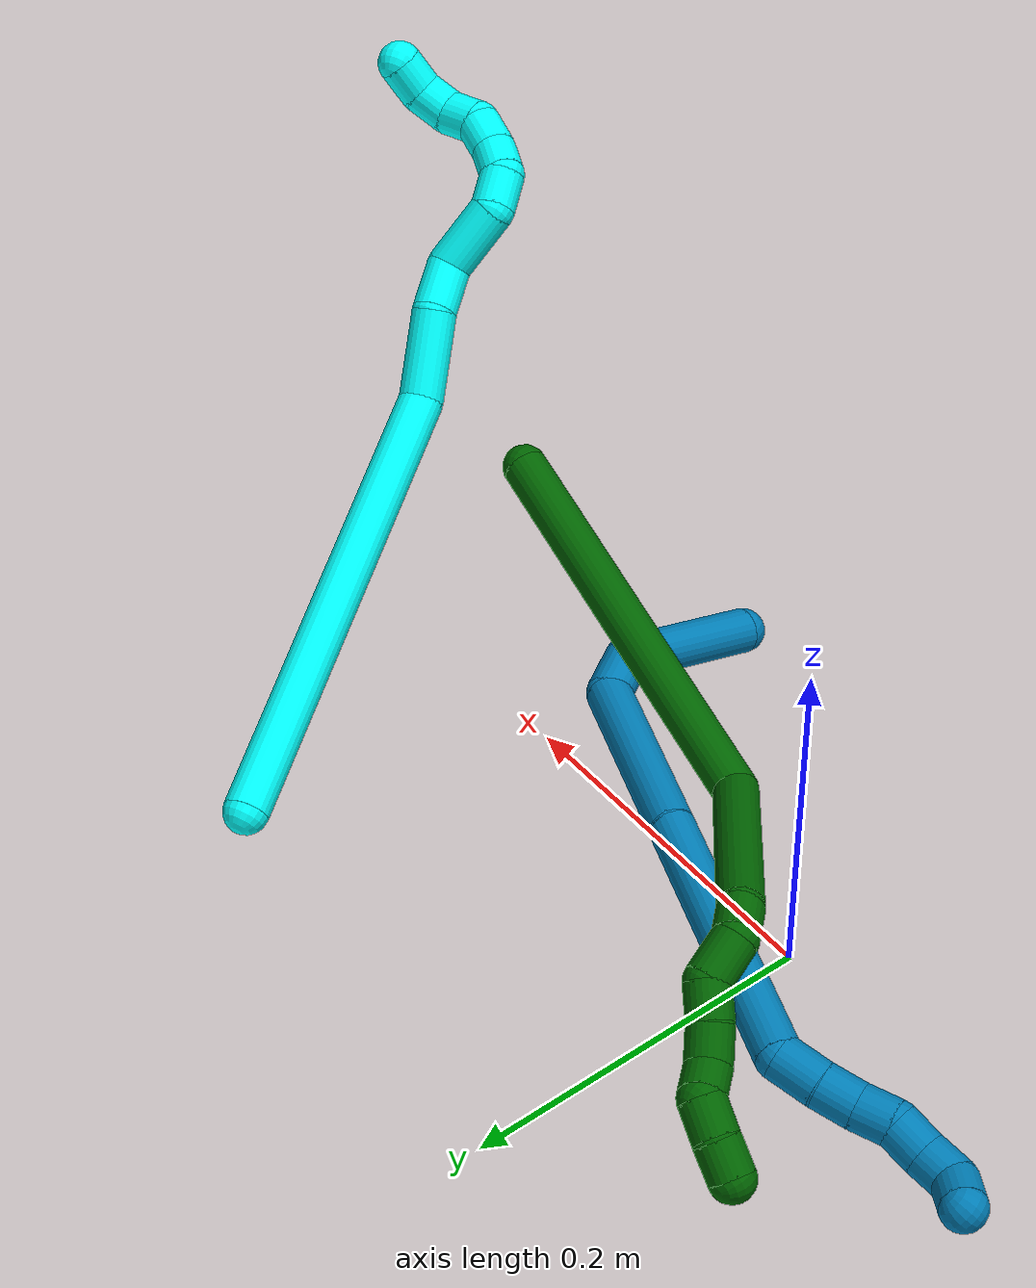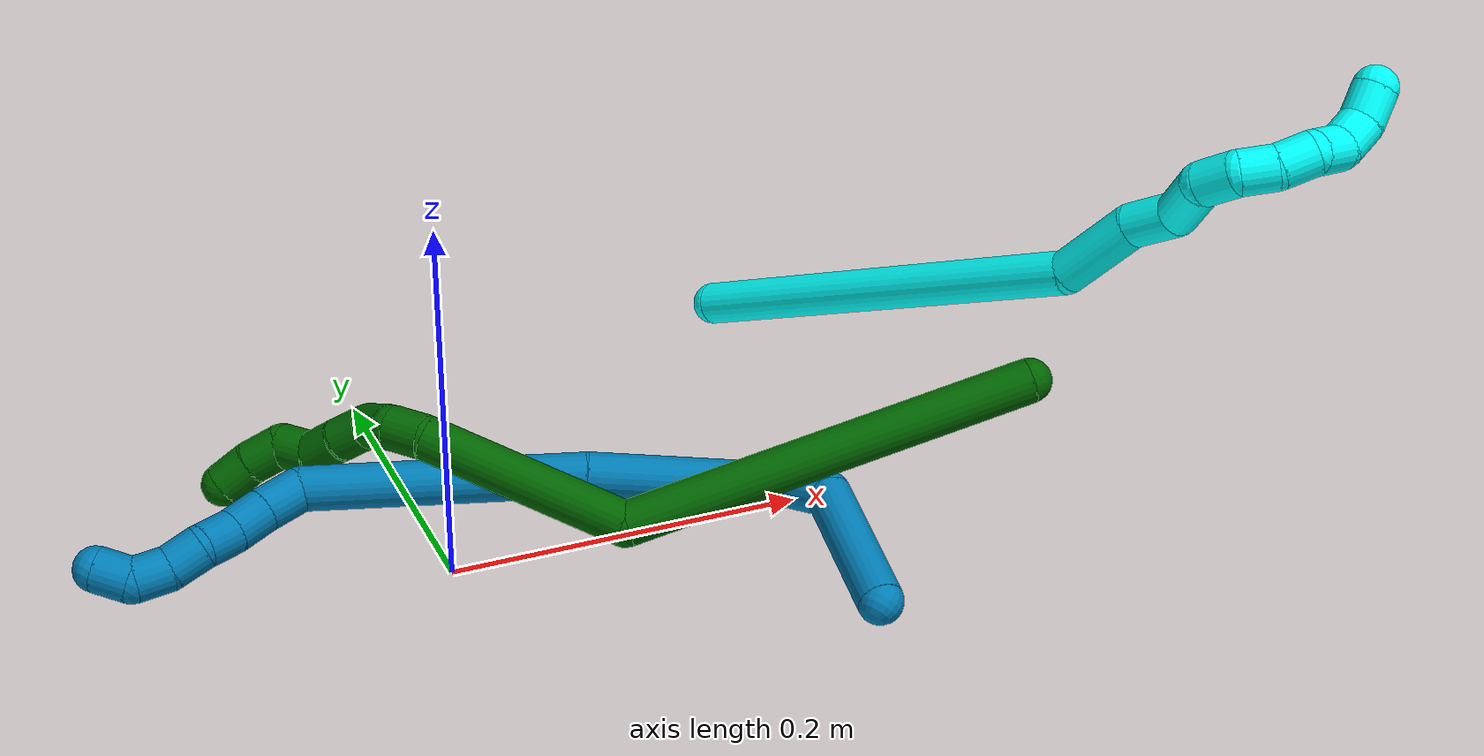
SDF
<sdf version="1.7">
 <world name="default">
  <model name="3">
   <static>0</static>
   <link name="3">
    <collision name="collision-cylinder-e_1_1_4">
     <pose>0.011978 0.007342 -0.128714 -3.08462 0.092639 -2.03918</pose>
     <geometry><cylinder><radius>0.0125</radius><length>0.258956</length></cylinder></geometry>
     <surface>
      <friction><ode><mu>1.16</mu><mu2>1.16</mu2><slip1>0</slip1><slip2>0</slip2></ode></friction>
      <contact><ode><kp>1e+06</kp><kd>1</kd><max_vel>0</max_vel><min_depth>0.001</min_depth></ode></contact>
     </surface>
    </collision>
    <visual name="visual-cylinder-e_1_1_4">
     <pose>0.011978 0.007342 -0.128714 -3.08462 0.092639 -2.03918</pose>
     <geometry><cylinder><radius>0.0125</radius><length>0.258956</length></cylinder></geometry>
     <material><ambient>0.003922 1 0.996078 1</ambient></material>
    </visual>
    <collision name="collision-cylinder-e_2_4_5">
     <pose>0.027676 0.005027 -0.280167 2.74003 0.149487 0.705124</pose>
     <geometry><cylinder><radius>0.0125</radius><length>0.049968</length></cylinder></geometry>
     <surface>
      <friction><ode><mu>1.16</mu><mu2>1.16</mu2><slip1>0</slip1><slip2>0</slip2></ode></friction>
      <contact><ode><kp>1e+06</kp><kd>1</kd><max_vel>0</max_vel><min_depth>0.001</min_depth></ode></contact>
     </surface>
    </collision>
    <visual name="visual-cylinder-e_2_4_5">
     <pose>0.027676 0.005027 -0.280167 2.74003 0.149487 0.705124</pose>
     <geometry><cylinder><radius>0.0125</radius><length>0.049968</length></cylinder></geometry>
     <material><ambient>0.003922 1 0.996078 1</ambient></material>
    </visual>
    <collision name="collision-cylinder-e_3_5_6">
     <pose>0.033183 -0.005691 -0.317109 3.06696 0.124774 2.06422</pose>
     <geometry><cylinder><radius>0.0125</radius><length>0.028705</length></cylinder></geometry>
     <surface>
      <friction><ode><mu>1.16</mu><mu2>1.16</mu2><slip1>0</slip1><slip2>0</slip2></ode></friction>
      <contact><ode><kp>1e+06</kp><kd>1</kd><max_vel>0</max_vel><min_depth>0.001</min_depth></ode></contact>
     </surface>
    </collision>
    <visual name="visual-cylinder-e_3_5_6">
     <pose>0.033183 -0.005691 -0.317109 3.06696 0.124774 2.06422</pose>
     <geometry><cylinder><radius>0.0125</radius><length>0.028705</length></cylinder></geometry>
     <material><ambient>0.003922 1 0.996078 1</ambient></material>
    </visual>
    <collision name="collision-cylinder-e_4_6_7">
     <pose>0.026545 -0.014683 -0.347356 2.68258 -0.439908 -1.52684</pose>
     <geometry><cylinder><radius>0.0125</radius><length>0.039564</length></cylinder></geometry>
     <surface>
      <friction><ode><mu>1.16</mu><mu2>1.16</mu2><slip1>0</slip1><slip2>0</slip2></ode></friction>
      <contact><ode><kp>1e+06</kp><kd>1</kd><max_vel>0</max_vel><min_depth>0.001</min_depth></ode></contact>
     </surface>
    </collision>
    <visual name="visual-cylinder-e_4_6_7">
     <pose>0.026545 -0.014683 -0.347356 2.68258 -0.439908 -1.52684</pose>
     <geometry><cylinder><radius>0.0125</radius><length>0.039564</length></cylinder></geometry>
     <material><ambient>0.003922 1 0.996078 1</ambient></material>
    </visual>
    <collision name="collision-cylinder-e_5_7_8">
     <pose>0.019686 -0.023751 -0.37413 3.03593 0.144101 1.87699</pose>
     <geometry><cylinder><radius>0.0125</radius><length>0.021803</length></cylinder></geometry>
     <surface>
      <friction><ode><mu>1.16</mu><mu2>1.16</mu2><slip1>0</slip1><slip2>0</slip2></ode></friction>
      <contact><ode><kp>1e+06</kp><kd>1</kd><max_vel>0</max_vel><min_depth>0.001</min_depth></ode></contact>
     </surface>
    </collision>
    <visual name="visual-cylinder-e_5_7_8">
     <pose>0.019686 -0.023751 -0.37413 3.03593 0.144101 1.87699</pose>
     <geometry><cylinder><radius>0.0125</radius><length>0.021803</length></cylinder></geometry>
     <material><ambient>0.003922 1 0.996078 1</ambient></material>
    </visual>
    <collision name="collision-cylinder-e_6_8_9">
     <pose>0.027843 -0.023885 -0.392389 -3.00914 0.714599 -2.78994</pose>
     <geometry><cylinder><radius>0.0125</radius><length>0.020117</length></cylinder></geometry>
     <surface>
      <friction><ode><mu>1.16</mu><mu2>1.16</mu2><slip1>0</slip1><slip2>0</slip2></ode></friction>
      <contact><ode><kp>1e+06</kp><kd>1</kd><max_vel>0</max_vel><min_depth>0.001</min_depth></ode></contact>
     </surface>
    </collision>
    <visual name="visual-cylinder-e_6_8_9">
     <pose>0.027843 -0.023885 -0.392389 -3.00914 0.714599 -2.78994</pose>
     <geometry><cylinder><radius>0.0125</radius><length>0.020117</length></cylinder></geometry>
     <material><ambient>0.003922 1 0.996078 1</ambient></material>
    </visual>
    <collision name="collision-cylinder-e_7_9_10">
     <pose>0.042134 -0.024024 -0.40631 2.96463 0.870391 2.76451</pose>
     <geometry><cylinder><radius>0.0125</radius><length>0.02014</length></cylinder></geometry>
     <surface>
      <friction><ode><mu>1.16</mu><mu2>1.16</mu2><slip1>0</slip1><slip2>0</slip2></ode></friction>
      <contact><ode><kp>1e+06</kp><kd>1</kd><max_vel>0</max_vel><min_depth>0.001</min_depth></ode></contact>
     </surface>
    </collision>
    <visual name="visual-cylinder-e_7_9_10">
     <pose>0.042134 -0.024024 -0.40631 2.96463 0.870391 2.76451</pose>
     <geometry><cylinder><radius>0.0125</radius><length>0.02014</length></cylinder></geometry>
     <material><ambient>0.003922 1 0.996078 1</ambient></material>
    </visual>
    <collision name="collision-cylinder-e_8_10_11">
     <pose>0.059879 -0.024159 -0.414119 -2.52436 1.39913 -2.41735</pose>
     <geometry><cylinder><radius>0.0125</radius><length>0.020392</length></cylinder></geometry>
     <surface>
      <friction><ode><mu>1.16</mu><mu2>1.16</mu2><slip1>0</slip1><slip2>0</slip2></ode></friction>
      <contact><ode><kp>1e+06</kp><kd>1</kd><max_vel>0</max_vel><min_depth>0.001</min_depth></ode></contact>
     </surface>
    </collision>
    <visual name="visual-cylinder-e_8_10_11">
     <pose>0.059879 -0.024159 -0.414119 -2.52436 1.39913 -2.41735</pose>
     <geometry><cylinder><radius>0.0125</radius><length>0.020392</length></cylinder></geometry>
     <material><ambient>0.003922 1 0.996078 1</ambient></material>
    </visual>
    <collision name="collision-cylinder-e_9_11_12">
     <pose>0.078783 -0.027429 -0.417646 2.02843 1.07691 1.53002</pose>
     <geometry><cylinder><radius>0.0125</radius><length>0.020119</length></cylinder></geometry>
     <surface>
      <friction><ode><mu>1.16</mu><mu2>1.16</mu2><slip1>0</slip1><slip2>0</slip2></ode></friction>
      <contact><ode><kp>1e+06</kp><kd>1</kd><max_vel>0</max_vel><min_depth>0.001</min_depth></ode></contact>
     </surface>
    </collision>
    <visual name="visual-cylinder-e_9_11_12">
     <pose>0.078783 -0.027429 -0.417646 2.02843 1.07691 1.53002</pose>
     <geometry><cylinder><radius>0.0125</radius><length>0.020119</length></cylinder></geometry>
     <material><ambient>0.003922 1 0.996078 1</ambient></material>
    </visual>
    <collision name="collision-cylinder-e_10_12_2">
     <pose>0.093494 -0.039471 -0.422552 1.91672 0.616851 0.851484</pose>
     <geometry><cylinder><radius>0.0125</radius><length>0.020236</length></cylinder></geometry>
     <surface>
      <friction><ode><mu>1.16</mu><mu2>1.16</mu2><slip1>0</slip1><slip2>0</slip2></ode></friction>
      <contact><ode><kp>1e+06</kp><kd>1</kd><max_vel>0</max_vel><min_depth>0.001</min_depth></ode></contact>
     </surface>
    </collision>
    <visual name="visual-cylinder-e_10_12_2">
     <pose>0.093494 -0.039471 -0.422552 1.91672 0.616851 0.851484</pose>
     <geometry><cylinder><radius>0.0125</radius><length>0.020236</length></cylinder></geometry>
     <material><ambient>0.003922 1 0.996078 1</ambient></material>
    </visual>
    <collision name="collision-sphere-2">
     <pose>0.099347 -0.047236 -0.42535 0 -0 0</pose>
     <geometry><sphere><radius>0.0125</radius></sphere></geometry>
     <surface>
      <friction><ode><mu>1.16</mu><mu2>1.16</mu2><slip1>0</slip1><slip2>0</slip2></ode></friction>
      <contact><ode><kp>1e+06</kp><kd>1</kd><max_vel>0</max_vel><min_depth>0.001</min_depth></ode></contact>
     </surface>
    </collision>
    <visual name="visual-sphere-2">
     <pose>0.099347 -0.047236 -0.42535 0 -0 0</pose>
     <geometry><sphere><radius>0.0125</radius></sphere></geometry>
     <material><ambient>0.003922 1 0.996078 1</ambient></material>
    </visual>
    <collision name="collision-sphere-12">
     <pose>0.08764 -0.031707 -0.419753 0 -0 0</pose>
     <geometry><sphere><radius>0.0125</radius></sphere></geometry>
     <surface>
      <friction><ode><mu>1.16</mu><mu2>1.16</mu2><slip1>0</slip1><slip2>0</slip2></ode></friction>
      <contact><ode><kp>1e+06</kp><kd>1</kd><max_vel>0</max_vel><min_depth>0.001</min_depth></ode></contact>
     </surface>
    </collision>
    <visual name="visual-sphere-12">
     <pose>0.08764 -0.031707 -0.419753 0 -0 0</pose>
     <geometry><sphere><radius>0.0125</radius></sphere></geometry>
     <material><ambient>0.003922 1 0.996078 1</ambient></material>
    </visual>
    <collision name="collision-sphere-11">
     <pose>0.069925 -0.023151 -0.415539 0 -0 0</pose>
     <geometry><sphere><radius>0.0125</radius></sphere></geometry>
     <surface>
      <friction><ode><mu>1.16</mu><mu2>1.16</mu2><slip1>0</slip1><slip2>0</slip2></ode></friction>
      <contact><ode><kp>1e+06</kp><kd>1</kd><max_vel>0</max_vel><min_depth>0.001</min_depth></ode></contact>
     </surface>
    </collision>
    <visual name="visual-sphere-11">
     <pose>0.069925 -0.023151 -0.415539 0 -0 0</pose>
     <geometry><sphere><radius>0.0125</radius></sphere></geometry>
     <material><ambient>0.003922 1 0.996078 1</ambient></material>
    </visual>
    <collision name="collision-sphere-10">
     <pose>0.049833 -0.025167 -0.412699 0 -0 0</pose>
     <geometry><sphere><radius>0.0125</radius></sphere></geometry>
     <surface>
      <friction><ode><mu>1.16</mu><mu2>1.16</mu2><slip1>0</slip1><slip2>0</slip2></ode></friction>
      <contact><ode><kp>1e+06</kp><kd>1</kd><max_vel>0</max_vel><min_depth>0.001</min_depth></ode></contact>
     </surface>
    </collision>
    <visual name="visual-sphere-10">
     <pose>0.049833 -0.025167 -0.412699 0 -0 0</pose>
     <geometry><sphere><radius>0.0125</radius></sphere></geometry>
     <material><ambient>0.003922 1 0.996078 1</ambient></material>
    </visual>
    <collision name="collision-sphere-9">
     <pose>0.034435 -0.022882 -0.39992 0 -0 0</pose>
     <geometry><sphere><radius>0.0125</radius></sphere></geometry>
     <surface>
      <friction><ode><mu>1.16</mu><mu2>1.16</mu2><slip1>0</slip1><slip2>0</slip2></ode></friction>
      <contact><ode><kp>1e+06</kp><kd>1</kd><max_vel>0</max_vel><min_depth>0.001</min_depth></ode></contact>
     </surface>
    </collision>
    <visual name="visual-sphere-9">
     <pose>0.034435 -0.022882 -0.39992 0 -0 0</pose>
     <geometry><sphere><radius>0.0125</radius></sphere></geometry>
     <material><ambient>0.003922 1 0.996078 1</ambient></material>
    </visual>
    <collision name="collision-sphere-4">
     <pose>0.023955 0.014683 -0.257427 0 -0 0</pose>
     <geometry><sphere><radius>0.0125</radius></sphere></geometry>
     <surface>
      <friction><ode><mu>1.16</mu><mu2>1.16</mu2><slip1>0</slip1><slip2>0</slip2></ode></friction>
      <contact><ode><kp>1e+06</kp><kd>1</kd><max_vel>0</max_vel><min_depth>0.001</min_depth></ode></contact>
     </surface>
    </collision>
    <visual name="visual-sphere-4">
     <pose>0.023955 0.014683 -0.257427 0 -0 0</pose>
     <geometry><sphere><radius>0.0125</radius></sphere></geometry>
     <material><ambient>0.003922 1 0.996078 1</ambient></material>
    </visual>
    <collision name="collision-sphere-1">
     <geometry><sphere><radius>0.0125</radius></sphere></geometry>
     <surface>
      <friction><ode><mu>1.16</mu><mu2>1.16</mu2><slip1>0</slip1><slip2>0</slip2></ode></friction>
      <contact><ode><kp>1e+06</kp><kd>1</kd><max_vel>0</max_vel><min_depth>0.001</min_depth></ode></contact>
     </surface>
    </collision>
    <visual name="visual-sphere-1">
     <geometry><sphere><radius>0.0125</radius></sphere></geometry>
     <material><ambient>0.003922 1 0.996078 1</ambient></material>
    </visual>
    <collision name="collision-sphere-8">
     <pose>0.021252 -0.024888 -0.384858 0 -0 0</pose>
     <geometry><sphere><radius>0.0125</radius></sphere></geometry>
     <surface>
      <friction><ode><mu>1.16</mu><mu2>1.16</mu2><slip1>0</slip1><slip2>0</slip2></ode></friction>
      <contact><ode><kp>1e+06</kp><kd>1</kd><max_vel>0</max_vel><min_depth>0.001</min_depth></ode></contact>
     </surface>
    </collision>
    <visual name="visual-sphere-8">
     <pose>0.021252 -0.024888 -0.384858 0 -0 0</pose>
     <geometry><sphere><radius>0.0125</radius></sphere></geometry>
     <material><ambient>0.003922 1 0.996078 1</ambient></material>
    </visual>
    <collision name="collision-sphere-5">
     <pose>0.031397 -0.004629 -0.302907 0 -0 0</pose>
     <geometry><sphere><radius>0.0125</radius></sphere></geometry>
     <surface>
      <friction><ode><mu>1.16</mu><mu2>1.16</mu2><slip1>0</slip1><slip2>0</slip2></ode></friction>
      <contact><ode><kp>1e+06</kp><kd>1</kd><max_vel>0</max_vel><min_depth>0.001</min_depth></ode></contact>
     </surface>
    </collision>
    <visual name="visual-sphere-5">
     <pose>0.031397 -0.004629 -0.302907 0 -0 0</pose>
     <geometry><sphere><radius>0.0125</radius></sphere></geometry>
     <material><ambient>0.003922 1 0.996078 1</ambient></material>
    </visual>
    <collision name="collision-sphere-6">
     <pose>0.034969 -0.006753 -0.33131 0 -0 0</pose>
     <geometry><sphere><radius>0.0125</radius></sphere></geometry>
     <surface>
      <friction><ode><mu>1.16</mu><mu2>1.16</mu2><slip1>0</slip1><slip2>0</slip2></ode></friction>
      <contact><ode><kp>1e+06</kp><kd>1</kd><max_vel>0</max_vel><min_depth>0.001</min_depth></ode></contact>
     </surface>
    </collision>
    <visual name="visual-sphere-6">
     <pose>0.034969 -0.006753 -0.33131 0 -0 0</pose>
     <geometry><sphere><radius>0.0125</radius></sphere></geometry>
     <material><ambient>0.003922 1 0.996078 1</ambient></material>
    </visual>
    <collision name="collision-sphere-7">
     <pose>0.018121 -0.022613 -0.363401 0 -0 0</pose>
     <geometry><sphere><radius>0.0125</radius></sphere></geometry>
     <surface>
      <friction><ode><mu>1.16</mu><mu2>1.16</mu2><slip1>0</slip1><slip2>0</slip2></ode></friction>
      <contact><ode><kp>1e+06</kp><kd>1</kd><max_vel>0</max_vel><min_depth>0.001</min_depth></ode></contact>
     </surface>
    </collision>
    <visual name="visual-sphere-7">
     <pose>0.018121 -0.022613 -0.363401 0 -0 0</pose>
     <geometry><sphere><radius>0.0125</radius></sphere></geometry>
     <material><ambient>0.003922 1 0.996078 1</ambient></material>
    </visual>
    <inertial>
     <pose>0.026047 -0.003835 -0.239616 0 -0 0</pose>
     <mass>0.5</mass>
     <inertia>
      <ixx>-0.001928</ixx>
      <ixy>0</ixy>
      <ixz>0</ixz>
      <iyy>-0.000627</iyy>
      <iyz>0</iyz>
      <izz>-0.000246</izz>
     </inertia>
    </inertial>
   </link>
   <pose>0.225643 0.180024 0.037614 -1.9858 0.067841 0.415054</pose>
  </model>
  <model name="6">
   <static>0</static>
   <link name="6">
    <collision name="collision-cylinder-e_1_1_4">
     <pose>-0.11022 0.009396 0.034117 -0.268757 -1.26013 0.196536</pose>
     <geometry><cylinder><radius>0.0125</radius><length>0.231523</length></cylinder></geometry>
     <surface>
      <friction><ode><mu>1.16</mu><mu2>1.16</mu2><slip1>0</slip1><slip2>0</slip2></ode></friction>
      <contact><ode><kp>1e+06</kp><kd>1</kd><max_vel>0</max_vel><min_depth>0.001</min_depth></ode></contact>
     </surface>
    </collision>
    <visual name="visual-cylinder-e_1_1_4">
     <pose>-0.11022 0.009396 0.034117 -0.268757 -1.26013 0.196536</pose>
     <geometry><cylinder><radius>0.0125</radius><length>0.231523</length></cylinder></geometry>
     <material><ambient>0 0.392157 0.003922 1</ambient></material>
    </visual>
    <collision name="collision-cylinder-e_2_4_5">
     <pose>-0.253489 -0.003683 0.111736 0.476877 -0.5937 -0.148426</pose>
     <geometry><cylinder><radius>0.0125</radius><length>0.11815</length></cylinder></geometry>
     <surface>
      <friction><ode><mu>1.16</mu><mu2>1.16</mu2><slip1>0</slip1><slip2>0</slip2></ode></friction>
      <contact><ode><kp>1e+06</kp><kd>1</kd><max_vel>0</max_vel><min_depth>0.001</min_depth></ode></contact>
     </surface>
    </collision>
    <visual name="visual-cylinder-e_2_4_5">
     <pose>-0.253489 -0.003683 0.111736 0.476877 -0.5937 -0.148426</pose>
     <geometry><cylinder><radius>0.0125</radius><length>0.11815</length></cylinder></geometry>
     <material><ambient>0 0.392157 0.003922 1</ambient></material>
    </visual>
    <collision name="collision-cylinder-e_3_5_6">
     <pose>-0.292112 -0.027586 0.16437 0.155073 -0.542779 -0.04323</pose>
     <geometry><cylinder><radius>0.0125</radius><length>0.021586</length></cylinder></geometry>
     <surface>
      <friction><ode><mu>1.16</mu><mu2>1.16</mu2><slip1>0</slip1><slip2>0</slip2></ode></friction>
      <contact><ode><kp>1e+06</kp><kd>1</kd><max_vel>0</max_vel><min_depth>0.001</min_depth></ode></contact>
     </surface>
    </collision>
    <visual name="visual-cylinder-e_3_5_6">
     <pose>-0.292112 -0.027586 0.16437 0.155073 -0.542779 -0.04323</pose>
     <geometry><cylinder><radius>0.0125</radius><length>0.021586</length></cylinder></geometry>
     <material><ambient>0 0.392157 0.003922 1</ambient></material>
    </visual>
    <collision name="collision-cylinder-e_4_6_7">
     <pose>-0.299804 -0.024466 0.185357 -0.366261 -0.165243 0.030671</pose>
     <geometry><cylinder><radius>0.0125</radius><length>0.025746</length></cylinder></geometry>
     <surface>
      <friction><ode><mu>1.16</mu><mu2>1.16</mu2><slip1>0</slip1><slip2>0</slip2></ode></friction>
      <contact><ode><kp>1e+06</kp><kd>1</kd><max_vel>0</max_vel><min_depth>0.001</min_depth></ode></contact>
     </surface>
    </collision>
    <visual name="visual-cylinder-e_4_6_7">
     <pose>-0.299804 -0.024466 0.185357 -0.366261 -0.165243 0.030671</pose>
     <geometry><cylinder><radius>0.0125</radius><length>0.025746</length></cylinder></geometry>
     <material><ambient>0 0.392157 0.003922 1</ambient></material>
    </visual>
    <collision name="collision-cylinder-e_5_7_8">
     <pose>-0.309268 -0.015678 0.203218 -0.614809 -0.785011 0.261357</pose>
     <geometry><cylinder><radius>0.0125</radius><length>0.020787</length></cylinder></geometry>
     <surface>
      <friction><ode><mu>1.16</mu><mu2>1.16</mu2><slip1>0</slip1><slip2>0</slip2></ode></friction>
      <contact><ode><kp>1e+06</kp><kd>1</kd><max_vel>0</max_vel><min_depth>0.001</min_depth></ode></contact>
     </surface>
    </collision>
    <visual name="visual-cylinder-e_5_7_8">
     <pose>-0.309268 -0.015678 0.203218 -0.614809 -0.785011 0.261357</pose>
     <geometry><cylinder><radius>0.0125</radius><length>0.020787</length></cylinder></geometry>
     <material><ambient>0 0.392157 0.003922 1</ambient></material>
    </visual>
    <collision name="collision-cylinder-e_6_8_9">
     <pose>-0.323016 -0.006365 0.216008 -0.641932 -0.647139 0.222069</pose>
     <geometry><cylinder><radius>0.0125</radius><length>0.021234</length></cylinder></geometry>
     <surface>
      <friction><ode><mu>1.16</mu><mu2>1.16</mu2><slip1>0</slip1><slip2>0</slip2></ode></friction>
      <contact><ode><kp>1e+06</kp><kd>1</kd><max_vel>0</max_vel><min_depth>0.001</min_depth></ode></contact>
     </surface>
    </collision>
    <visual name="visual-cylinder-e_6_8_9">
     <pose>-0.323016 -0.006365 0.216008 -0.641932 -0.647139 0.222069</pose>
     <geometry><cylinder><radius>0.0125</radius><length>0.021234</length></cylinder></geometry>
     <material><ambient>0 0.392157 0.003922 1</ambient></material>
    </visual>
    <collision name="collision-cylinder-e_7_9_10">
     <pose>-0.334423 -0.00222 0.231435 0.106797 -0.522512 -0.028579</pose>
     <geometry><cylinder><radius>0.0125</radius><length>0.020061</length></cylinder></geometry>
     <surface>
      <friction><ode><mu>1.16</mu><mu2>1.16</mu2><slip1>0</slip1><slip2>0</slip2></ode></friction>
      <contact><ode><kp>1e+06</kp><kd>1</kd><max_vel>0</max_vel><min_depth>0.001</min_depth></ode></contact>
     </surface>
    </collision>
    <visual name="visual-cylinder-e_7_9_10">
     <pose>-0.334423 -0.00222 0.231435 0.106797 -0.522512 -0.028579</pose>
     <geometry><cylinder><radius>0.0125</radius><length>0.020061</length></cylinder></geometry>
     <material><ambient>0 0.392157 0.003922 1</ambient></material>
    </visual>
    <collision name="collision-cylinder-e_8_10_11">
     <pose>-0.348507 0.000296 0.243953 -0.726383 -1.05201 0.43433</pose>
     <geometry><cylinder><radius>0.0125</radius><length>0.020908</length></cylinder></geometry>
     <surface>
      <friction><ode><mu>1.16</mu><mu2>1.16</mu2><slip1>0</slip1><slip2>0</slip2></ode></friction>
      <contact><ode><kp>1e+06</kp><kd>1</kd><max_vel>0</max_vel><min_depth>0.001</min_depth></ode></contact>
     </surface>
    </collision>
    <visual name="visual-cylinder-e_8_10_11">
     <pose>-0.348507 0.000296 0.243953 -0.726383 -1.05201 0.43433</pose>
     <geometry><cylinder><radius>0.0125</radius><length>0.020908</length></cylinder></geometry>
     <material><ambient>0 0.392157 0.003922 1</ambient></material>
    </visual>
    <collision name="collision-cylinder-e_9_11_2">
     <pose>-0.366099 0.008275 0.250471 -1.04328 -1.01817 0.620852</pose>
     <geometry><cylinder><radius>0.0125</radius><length>0.020004</length></cylinder></geometry>
     <surface>
      <friction><ode><mu>1.16</mu><mu2>1.16</mu2><slip1>0</slip1><slip2>0</slip2></ode></friction>
      <contact><ode><kp>1e+06</kp><kd>1</kd><max_vel>0</max_vel><min_depth>0.001</min_depth></ode></contact>
     </surface>
    </collision>
    <visual name="visual-cylinder-e_9_11_2">
     <pose>-0.366099 0.008275 0.250471 -1.04328 -1.01817 0.620852</pose>
     <geometry><cylinder><radius>0.0125</radius><length>0.020004</length></cylinder></geometry>
     <material><ambient>0 0.392157 0.003922 1</ambient></material>
    </visual>
    <collision name="collision-sphere-2">
     <pose>-0.374613 0.012812 0.253114 0 -0 0</pose>
     <geometry><sphere><radius>0.0125</radius></sphere></geometry>
     <surface>
      <friction><ode><mu>1.16</mu><mu2>1.16</mu2><slip1>0</slip1><slip2>0</slip2></ode></friction>
      <contact><ode><kp>1e+06</kp><kd>1</kd><max_vel>0</max_vel><min_depth>0.001</min_depth></ode></contact>
     </surface>
    </collision>
    <visual name="visual-sphere-2">
     <pose>-0.374613 0.012812 0.253114 0 -0 0</pose>
     <geometry><sphere><radius>0.0125</radius></sphere></geometry>
     <material><ambient>0 0.392157 0.003922 1</ambient></material>
    </visual>
    <collision name="collision-sphere-11">
     <pose>-0.357586 0.003738 0.247828 0 -0 0</pose>
     <geometry><sphere><radius>0.0125</radius></sphere></geometry>
     <surface>
      <friction><ode><mu>1.16</mu><mu2>1.16</mu2><slip1>0</slip1><slip2>0</slip2></ode></friction>
      <contact><ode><kp>1e+06</kp><kd>1</kd><max_vel>0</max_vel><min_depth>0.001</min_depth></ode></contact>
     </surface>
    </collision>
    <visual name="visual-sphere-11">
     <pose>-0.357586 0.003738 0.247828 0 -0 0</pose>
     <geometry><sphere><radius>0.0125</radius></sphere></geometry>
     <material><ambient>0 0.392157 0.003922 1</ambient></material>
    </visual>
    <collision name="collision-sphere-10">
     <pose>-0.339429 -0.003147 0.240078 0 -0 0</pose>
     <geometry><sphere><radius>0.0125</radius></sphere></geometry>
     <surface>
      <friction><ode><mu>1.16</mu><mu2>1.16</mu2><slip1>0</slip1><slip2>0</slip2></ode></friction>
      <contact><ode><kp>1e+06</kp><kd>1</kd><max_vel>0</max_vel><min_depth>0.001</min_depth></ode></contact>
     </surface>
    </collision>
    <visual name="visual-sphere-10">
     <pose>-0.339429 -0.003147 0.240078 0 -0 0</pose>
     <geometry><sphere><radius>0.0125</radius></sphere></geometry>
     <material><ambient>0 0.392157 0.003922 1</ambient></material>
    </visual>
    <collision name="collision-sphere-9">
     <pose>-0.329417 -0.001294 0.222792 0 -0 0</pose>
     <geometry><sphere><radius>0.0125</radius></sphere></geometry>
     <surface>
      <friction><ode><mu>1.16</mu><mu2>1.16</mu2><slip1>0</slip1><slip2>0</slip2></ode></friction>
      <contact><ode><kp>1e+06</kp><kd>1</kd><max_vel>0</max_vel><min_depth>0.001</min_depth></ode></contact>
     </surface>
    </collision>
    <visual name="visual-sphere-9">
     <pose>-0.329417 -0.001294 0.222792 0 -0 0</pose>
     <geometry><sphere><radius>0.0125</radius></sphere></geometry>
     <material><ambient>0 0.392157 0.003922 1</ambient></material>
    </visual>
    <collision name="collision-sphere-4">
     <pose>-0.220441 0.018793 0.068234 0 -0 0</pose>
     <geometry><sphere><radius>0.0125</radius></sphere></geometry>
     <surface>
      <friction><ode><mu>1.16</mu><mu2>1.16</mu2><slip1>0</slip1><slip2>0</slip2></ode></friction>
      <contact><ode><kp>1e+06</kp><kd>1</kd><max_vel>0</max_vel><min_depth>0.001</min_depth></ode></contact>
     </surface>
    </collision>
    <visual name="visual-sphere-4">
     <pose>-0.220441 0.018793 0.068234 0 -0 0</pose>
     <geometry><sphere><radius>0.0125</radius></sphere></geometry>
     <material><ambient>0 0.392157 0.003922 1</ambient></material>
    </visual>
    <collision name="collision-sphere-1">
     <geometry><sphere><radius>0.0125</radius></sphere></geometry>
     <surface>
      <friction><ode><mu>1.16</mu><mu2>1.16</mu2><slip1>0</slip1><slip2>0</slip2></ode></friction>
      <contact><ode><kp>1e+06</kp><kd>1</kd><max_vel>0</max_vel><min_depth>0.001</min_depth></ode></contact>
     </surface>
    </collision>
    <visual name="visual-sphere-1">
     <geometry><sphere><radius>0.0125</radius></sphere></geometry>
     <material><ambient>0 0.392157 0.003922 1</ambient></material>
    </visual>
    <collision name="collision-sphere-8">
     <pose>-0.316615 -0.011437 0.209224 0 -0 0</pose>
     <geometry><sphere><radius>0.0125</radius></sphere></geometry>
     <surface>
      <friction><ode><mu>1.16</mu><mu2>1.16</mu2><slip1>0</slip1><slip2>0</slip2></ode></friction>
      <contact><ode><kp>1e+06</kp><kd>1</kd><max_vel>0</max_vel><min_depth>0.001</min_depth></ode></contact>
     </surface>
    </collision>
    <visual name="visual-sphere-8">
     <pose>-0.316615 -0.011437 0.209224 0 -0 0</pose>
     <geometry><sphere><radius>0.0125</radius></sphere></geometry>
     <material><ambient>0 0.392157 0.003922 1</ambient></material>
    </visual>
    <collision name="collision-sphere-5">
     <pose>-0.286537 -0.026158 0.155239 0 -0 0</pose>
     <geometry><sphere><radius>0.0125</radius></sphere></geometry>
     <surface>
      <friction><ode><mu>1.16</mu><mu2>1.16</mu2><slip1>0</slip1><slip2>0</slip2></ode></friction>
      <contact><ode><kp>1e+06</kp><kd>1</kd><max_vel>0</max_vel><min_depth>0.001</min_depth></ode></contact>
     </surface>
    </collision>
    <visual name="visual-sphere-5">
     <pose>-0.286537 -0.026158 0.155239 0 -0 0</pose>
     <geometry><sphere><radius>0.0125</radius></sphere></geometry>
     <material><ambient>0 0.392157 0.003922 1</ambient></material>
    </visual>
    <collision name="collision-sphere-6">
     <pose>-0.297687 -0.029013 0.173501 0 -0 0</pose>
     <geometry><sphere><radius>0.0125</radius></sphere></geometry>
     <surface>
      <friction><ode><mu>1.16</mu><mu2>1.16</mu2><slip1>0</slip1><slip2>0</slip2></ode></friction>
      <contact><ode><kp>1e+06</kp><kd>1</kd><max_vel>0</max_vel><min_depth>0.001</min_depth></ode></contact>
     </surface>
    </collision>
    <visual name="visual-sphere-6">
     <pose>-0.297687 -0.029013 0.173501 0 -0 0</pose>
     <geometry><sphere><radius>0.0125</radius></sphere></geometry>
     <material><ambient>0 0.392157 0.003922 1</ambient></material>
    </visual>
    <collision name="collision-sphere-7">
     <pose>-0.301922 -0.019918 0.197212 0 -0 0</pose>
     <geometry><sphere><radius>0.0125</radius></sphere></geometry>
     <surface>
      <friction><ode><mu>1.16</mu><mu2>1.16</mu2><slip1>0</slip1><slip2>0</slip2></ode></friction>
      <contact><ode><kp>1e+06</kp><kd>1</kd><max_vel>0</max_vel><min_depth>0.001</min_depth></ode></contact>
     </surface>
    </collision>
    <visual name="visual-sphere-7">
     <pose>-0.301922 -0.019918 0.197212 0 -0 0</pose>
     <geometry><sphere><radius>0.0125</radius></sphere></geometry>
     <material><ambient>0 0.392157 0.003922 1</ambient></material>
    </visual>
    <inertial>
     <pose>-0.208199 0.000362 0.105971 0 -0 0</pose>
     <mass>0.5</mass>
     <inertia>
      <ixx>0.000455</ixx>
      <ixy>0</ixy>
      <ixz>0</ixz>
      <iyy>0.001226</iyy>
      <iyz>0</iyz>
      <izz>0.001066</izz>
     </inertia>
    </inertial>
   </link>
   <pose>0.307992 -0.068374 0.086425 -1.55065 -0.180461 0.165706</pose>
  </model>
  <model name="9">
   <static>0</static>
   <link name="9">
    <collision name="collision-cylinder-e_1_1_4">
     <pose>0.028581 -0.016777 -0.02412 2.53384 0.771589 1.8266</pose>
     <geometry><cylinder><radius>0.0125</radius><length>0.081978</length></cylinder></geometry>
     <surface>
      <friction><ode><mu>1.16</mu><mu2>1.16</mu2><slip1>0</slip1><slip2>0</slip2></ode></friction>
      <contact><ode><kp>1e+06</kp><kd>1</kd><max_vel>0</max_vel><min_depth>0.001</min_depth></ode></contact>
     </surface>
    </collision>
    <visual name="visual-cylinder-e_1_1_4">
     <pose>0.028581 -0.016777 -0.02412 2.53384 0.771589 1.8266</pose>
     <geometry><cylinder><radius>0.0125</radius><length>0.081978</length></cylinder></geometry>
     <material><ambient>0 0.490196 0.709804 1</ambient></material>
    </visual>
    <collision name="collision-cylinder-e_2_4_5">
     <pose>0.068127 -0.040252 -0.047364 1.44075 1.01875 0.911624</pose>
     <geometry><cylinder><radius>0.0125</radius><length>0.025757</length></cylinder></geometry>
     <surface>
      <friction><ode><mu>1.16</mu><mu2>1.16</mu2><slip1>0</slip1><slip2>0</slip2></ode></friction>
      <contact><ode><kp>1e+06</kp><kd>1</kd><max_vel>0</max_vel><min_depth>0.001</min_depth></ode></contact>
     </surface>
    </collision>
    <visual name="visual-cylinder-e_2_4_5">
     <pose>0.068127 -0.040252 -0.047364 1.44075 1.01875 0.911624</pose>
     <geometry><cylinder><radius>0.0125</radius><length>0.025757</length></cylinder></geometry>
     <material><ambient>0 0.490196 0.709804 1</ambient></material>
    </visual>
    <collision name="collision-cylinder-e_3_5_6">
     <pose>0.097552 -0.092981 -0.021779 1.07816 0.339638 0.204426</pose>
     <geometry><cylinder><radius>0.0125</radius><length>0.11082</length></cylinder></geometry>
     <surface>
      <friction><ode><mu>1.16</mu><mu2>1.16</mu2><slip1>0</slip1><slip2>0</slip2></ode></friction>
      <contact><ode><kp>1e+06</kp><kd>1</kd><max_vel>0</max_vel><min_depth>0.001</min_depth></ode></contact>
     </surface>
    </collision>
    <visual name="visual-cylinder-e_3_5_6">
     <pose>0.097552 -0.092981 -0.021779 1.07816 0.339638 0.204426</pose>
     <geometry><cylinder><radius>0.0125</radius><length>0.11082</length></cylinder></geometry>
     <material><ambient>0 0.490196 0.709804 1</ambient></material>
    </visual>
    <collision name="collision-cylinder-e_4_6_7">
     <pose>0.14413 -0.198915 0.04417 0.967849 0.368938 0.195522</pose>
     <geometry><cylinder><radius>0.0125</radius><length>0.155943</length></cylinder></geometry>
     <surface>
      <friction><ode><mu>1.16</mu><mu2>1.16</mu2><slip1>0</slip1><slip2>0</slip2></ode></friction>
      <contact><ode><kp>1e+06</kp><kd>1</kd><max_vel>0</max_vel><min_depth>0.001</min_depth></ode></contact>
     </surface>
    </collision>
    <visual name="visual-cylinder-e_4_6_7">
     <pose>0.14413 -0.198915 0.04417 0.967849 0.368938 0.195522</pose>
     <geometry><cylinder><radius>0.0125</radius><length>0.155943</length></cylinder></geometry>
     <material><ambient>0 0.490196 0.709804 1</ambient></material>
    </visual>
    <collision name="collision-cylinder-e_5_7_8">
     <pose>0.171044 -0.264549 0.096168 0.489681 -0.098507 -0.024631</pose>
     <geometry><cylinder><radius>0.0125</radius><length>0.024499</length></cylinder></geometry>
     <surface>
      <friction><ode><mu>1.16</mu><mu2>1.16</mu2><slip1>0</slip1><slip2>0</slip2></ode></friction>
      <contact><ode><kp>1e+06</kp><kd>1</kd><max_vel>0</max_vel><min_depth>0.001</min_depth></ode></contact>
     </surface>
    </collision>
    <visual name="visual-cylinder-e_5_7_8">
     <pose>0.171044 -0.264549 0.096168 0.489681 -0.098507 -0.024631</pose>
     <geometry><cylinder><radius>0.0125</radius><length>0.024499</length></cylinder></geometry>
     <material><ambient>0 0.490196 0.709804 1</ambient></material>
    </visual>
    <collision name="collision-cylinder-e_6_8_9">
     <pose>0.16799 -0.274493 0.116305 0.421905 -0.177971 -0.038207</pose>
     <geometry><cylinder><radius>0.0125</radius><length>0.020891</length></cylinder></geometry>
     <surface>
      <friction><ode><mu>1.16</mu><mu2>1.16</mu2><slip1>0</slip1><slip2>0</slip2></ode></friction>
      <contact><ode><kp>1e+06</kp><kd>1</kd><max_vel>0</max_vel><min_depth>0.001</min_depth></ode></contact>
     </surface>
    </collision>
    <visual name="visual-cylinder-e_6_8_9">
     <pose>0.16799 -0.274493 0.116305 0.421905 -0.177971 -0.038207</pose>
     <geometry><cylinder><radius>0.0125</radius><length>0.020891</length></cylinder></geometry>
     <material><ambient>0 0.490196 0.709804 1</ambient></material>
    </visual>
    <collision name="collision-cylinder-e_7_9_10">
     <pose>0.163544 -0.283791 0.133901 0.554428 -0.262511 -0.075092</pose>
     <geometry><cylinder><radius>0.0125</radius><length>0.020016</length></cylinder></geometry>
     <surface>
      <friction><ode><mu>1.16</mu><mu2>1.16</mu2><slip1>0</slip1><slip2>0</slip2></ode></friction>
      <contact><ode><kp>1e+06</kp><kd>1</kd><max_vel>0</max_vel><min_depth>0.001</min_depth></ode></contact>
     </surface>
    </collision>
    <visual name="visual-cylinder-e_7_9_10">
     <pose>0.163544 -0.283791 0.133901 0.554428 -0.262511 -0.075092</pose>
     <geometry><cylinder><radius>0.0125</radius><length>0.020016</length></cylinder></geometry>
     <material><ambient>0 0.490196 0.709804 1</ambient></material>
    </visual>
    <collision name="collision-cylinder-e_8_10_11">
     <pose>0.161954 -0.292872 0.151236 0.412804 0.100825 0.021128</pose>
     <geometry><cylinder><radius>0.0125</radius><length>0.020008</length></cylinder></geometry>
     <surface>
      <friction><ode><mu>1.16</mu><mu2>1.16</mu2><slip1>0</slip1><slip2>0</slip2></ode></friction>
      <contact><ode><kp>1e+06</kp><kd>1</kd><max_vel>0</max_vel><min_depth>0.001</min_depth></ode></contact>
     </surface>
    </collision>
    <visual name="visual-cylinder-e_8_10_11">
     <pose>0.161954 -0.292872 0.151236 0.412804 0.100825 0.021128</pose>
     <geometry><cylinder><radius>0.0125</radius><length>0.020008</length></cylinder></geometry>
     <material><ambient>0 0.490196 0.709804 1</ambient></material>
    </visual>
    <collision name="collision-cylinder-e_9_11_12">
     <pose>0.16333 -0.303244 0.168052 0.691924 0.036951 0.013321</pose>
     <geometry><cylinder><radius>0.0125</radius><length>0.020009</length></cylinder></geometry>
     <surface>
      <friction><ode><mu>1.16</mu><mu2>1.16</mu2><slip1>0</slip1><slip2>0</slip2></ode></friction>
      <contact><ode><kp>1e+06</kp><kd>1</kd><max_vel>0</max_vel><min_depth>0.001</min_depth></ode></contact>
     </surface>
    </collision>
    <visual name="visual-cylinder-e_9_11_12">
     <pose>0.16333 -0.303244 0.168052 0.691924 0.036951 0.013321</pose>
     <geometry><cylinder><radius>0.0125</radius><length>0.020009</length></cylinder></geometry>
     <material><ambient>0 0.490196 0.709804 1</ambient></material>
    </visual>
    <collision name="collision-cylinder-e_10_12_2">
     <pose>0.167369 -0.318733 0.177829 1.34647 0.374127 0.299647</pose>
     <geometry><cylinder><radius>0.0125</radius><length>0.020077</length></cylinder></geometry>
     <surface>
      <friction><ode><mu>1.16</mu><mu2>1.16</mu2><slip1>0</slip1><slip2>0</slip2></ode></friction>
      <contact><ode><kp>1e+06</kp><kd>1</kd><max_vel>0</max_vel><min_depth>0.001</min_depth></ode></contact>
     </surface>
    </collision>
    <visual name="visual-cylinder-e_10_12_2">
     <pose>0.167369 -0.318733 0.177829 1.34647 0.374127 0.299647</pose>
     <geometry><cylinder><radius>0.0125</radius><length>0.020077</length></cylinder></geometry>
     <material><ambient>0 0.490196 0.709804 1</ambient></material>
    </visual>
    <collision name="collision-sphere-2">
     <pose>0.171037 -0.327843 0.179907 0 -0 0</pose>
     <geometry><sphere><radius>0.0125</radius></sphere></geometry>
     <surface>
      <friction><ode><mu>1.16</mu><mu2>1.16</mu2><slip1>0</slip1><slip2>0</slip2></ode></friction>
      <contact><ode><kp>1e+06</kp><kd>1</kd><max_vel>0</max_vel><min_depth>0.001</min_depth></ode></contact>
     </surface>
    </collision>
    <visual name="visual-sphere-2">
     <pose>0.171037 -0.327843 0.179907 0 -0 0</pose>
     <geometry><sphere><radius>0.0125</radius></sphere></geometry>
     <material><ambient>0 0.490196 0.709804 1</ambient></material>
    </visual>
    <collision name="collision-sphere-12">
     <pose>0.1637 -0.309623 0.17575 0 -0 0</pose>
     <geometry><sphere><radius>0.0125</radius></sphere></geometry>
     <surface>
      <friction><ode><mu>1.16</mu><mu2>1.16</mu2><slip1>0</slip1><slip2>0</slip2></ode></friction>
      <contact><ode><kp>1e+06</kp><kd>1</kd><max_vel>0</max_vel><min_depth>0.001</min_depth></ode></contact>
     </surface>
    </collision>
    <visual name="visual-sphere-12">
     <pose>0.1637 -0.309623 0.17575 0 -0 0</pose>
     <geometry><sphere><radius>0.0125</radius></sphere></geometry>
     <material><ambient>0 0.490196 0.709804 1</ambient></material>
    </visual>
    <collision name="collision-sphere-11">
     <pose>0.162961 -0.296865 0.160353 0 -0 0</pose>
     <geometry><sphere><radius>0.0125</radius></sphere></geometry>
     <surface>
      <friction><ode><mu>1.16</mu><mu2>1.16</mu2><slip1>0</slip1><slip2>0</slip2></ode></friction>
      <contact><ode><kp>1e+06</kp><kd>1</kd><max_vel>0</max_vel><min_depth>0.001</min_depth></ode></contact>
     </surface>
    </collision>
    <visual name="visual-sphere-11">
     <pose>0.162961 -0.296865 0.160353 0 -0 0</pose>
     <geometry><sphere><radius>0.0125</radius></sphere></geometry>
     <material><ambient>0 0.490196 0.709804 1</ambient></material>
    </visual>
    <collision name="collision-sphere-10">
     <pose>0.160947 -0.288879 0.142119 0 -0 0</pose>
     <geometry><sphere><radius>0.0125</radius></sphere></geometry>
     <surface>
      <friction><ode><mu>1.16</mu><mu2>1.16</mu2><slip1>0</slip1><slip2>0</slip2></ode></friction>
      <contact><ode><kp>1e+06</kp><kd>1</kd><max_vel>0</max_vel><min_depth>0.001</min_depth></ode></contact>
     </surface>
    </collision>
    <visual name="visual-sphere-10">
     <pose>0.160947 -0.288879 0.142119 0 -0 0</pose>
     <geometry><sphere><radius>0.0125</radius></sphere></geometry>
     <material><ambient>0 0.490196 0.709804 1</ambient></material>
    </visual>
    <collision name="collision-sphere-9">
     <pose>0.166141 -0.278703 0.125684 0 -0 0</pose>
     <geometry><sphere><radius>0.0125</radius></sphere></geometry>
     <surface>
      <friction><ode><mu>1.16</mu><mu2>1.16</mu2><slip1>0</slip1><slip2>0</slip2></ode></friction>
      <contact><ode><kp>1e+06</kp><kd>1</kd><max_vel>0</max_vel><min_depth>0.001</min_depth></ode></contact>
     </surface>
    </collision>
    <visual name="visual-sphere-9">
     <pose>0.166141 -0.278703 0.125684 0 -0 0</pose>
     <geometry><sphere><radius>0.0125</radius></sphere></geometry>
     <material><ambient>0 0.490196 0.709804 1</ambient></material>
    </visual>
    <collision name="collision-sphere-4">
     <pose>0.057161 -0.033555 -0.04824 0 -0 0</pose>
     <geometry><sphere><radius>0.0125</radius></sphere></geometry>
     <surface>
      <friction><ode><mu>1.16</mu><mu2>1.16</mu2><slip1>0</slip1><slip2>0</slip2></ode></friction>
      <contact><ode><kp>1e+06</kp><kd>1</kd><max_vel>0</max_vel><min_depth>0.001</min_depth></ode></contact>
     </surface>
    </collision>
    <visual name="visual-sphere-4">
     <pose>0.057161 -0.033555 -0.04824 0 -0 0</pose>
     <geometry><sphere><radius>0.0125</radius></sphere></geometry>
     <material><ambient>0 0.490196 0.709804 1</ambient></material>
    </visual>
    <collision name="collision-sphere-1">
     <geometry><sphere><radius>0.0125</radius></sphere></geometry>
     <surface>
      <friction><ode><mu>1.16</mu><mu2>1.16</mu2><slip1>0</slip1><slip2>0</slip2></ode></friction>
      <contact><ode><kp>1e+06</kp><kd>1</kd><max_vel>0</max_vel><min_depth>0.001</min_depth></ode></contact>
     </surface>
    </collision>
    <visual name="visual-sphere-1">
     <geometry><sphere><radius>0.0125</radius></sphere></geometry>
     <material><ambient>0 0.490196 0.709804 1</ambient></material>
    </visual>
    <collision name="collision-sphere-8">
     <pose>0.169839 -0.270283 0.106926 0 -0 0</pose>
     <geometry><sphere><radius>0.0125</radius></sphere></geometry>
     <surface>
      <friction><ode><mu>1.16</mu><mu2>1.16</mu2><slip1>0</slip1><slip2>0</slip2></ode></friction>
      <contact><ode><kp>1e+06</kp><kd>1</kd><max_vel>0</max_vel><min_depth>0.001</min_depth></ode></contact>
     </surface>
    </collision>
    <visual name="visual-sphere-8">
     <pose>0.169839 -0.270283 0.106926 0 -0 0</pose>
     <geometry><sphere><radius>0.0125</radius></sphere></geometry>
     <material><ambient>0 0.490196 0.709804 1</ambient></material>
    </visual>
    <collision name="collision-sphere-5">
     <pose>0.079093 -0.046949 -0.046488 0 -0 0</pose>
     <geometry><sphere><radius>0.0125</radius></sphere></geometry>
     <surface>
      <friction><ode><mu>1.16</mu><mu2>1.16</mu2><slip1>0</slip1><slip2>0</slip2></ode></friction>
      <contact><ode><kp>1e+06</kp><kd>1</kd><max_vel>0</max_vel><min_depth>0.001</min_depth></ode></contact>
     </surface>
    </collision>
    <visual name="visual-sphere-5">
     <pose>0.079093 -0.046949 -0.046488 0 -0 0</pose>
     <geometry><sphere><radius>0.0125</radius></sphere></geometry>
     <material><ambient>0 0.490196 0.709804 1</ambient></material>
    </visual>
    <collision name="collision-sphere-6">
     <pose>0.116012 -0.139013 0.00293 0 -0 0</pose>
     <geometry><sphere><radius>0.0125</radius></sphere></geometry>
     <surface>
      <friction><ode><mu>1.16</mu><mu2>1.16</mu2><slip1>0</slip1><slip2>0</slip2></ode></friction>
      <contact><ode><kp>1e+06</kp><kd>1</kd><max_vel>0</max_vel><min_depth>0.001</min_depth></ode></contact>
     </surface>
    </collision>
    <visual name="visual-sphere-6">
     <pose>0.116012 -0.139013 0.00293 0 -0 0</pose>
     <geometry><sphere><radius>0.0125</radius></sphere></geometry>
     <material><ambient>0 0.490196 0.709804 1</ambient></material>
    </visual>
    <collision name="collision-sphere-7">
     <pose>0.172249 -0.258816 0.085411 0 -0 0</pose>
     <geometry><sphere><radius>0.0125</radius></sphere></geometry>
     <surface>
      <friction><ode><mu>1.16</mu><mu2>1.16</mu2><slip1>0</slip1><slip2>0</slip2></ode></friction>
      <contact><ode><kp>1e+06</kp><kd>1</kd><max_vel>0</max_vel><min_depth>0.001</min_depth></ode></contact>
     </surface>
    </collision>
    <visual name="visual-sphere-7">
     <pose>0.172249 -0.258816 0.085411 0 -0 0</pose>
     <geometry><sphere><radius>0.0125</radius></sphere></geometry>
     <material><ambient>0 0.490196 0.709804 1</ambient></material>
    </visual>
    <inertial>
     <pose>0.116454 -0.159917 0.037404 0 -0 0</pose>
     <mass>0.5</mass>
     <inertia>
      <ixx>0.000534</ixx>
      <ixy>0</ixy>
      <ixz>0</ixz>
      <iyy>0.000388</iyy>
      <iyz>0</iyz>
      <izz>0.000194</izz>
     </inertia>
    </inertial>
   </link>
   <pose>0.190434 -0.131541 0.011634 -2.34791 0.533592 1.6312</pose>
  </model>
 </world>
</sdf>
